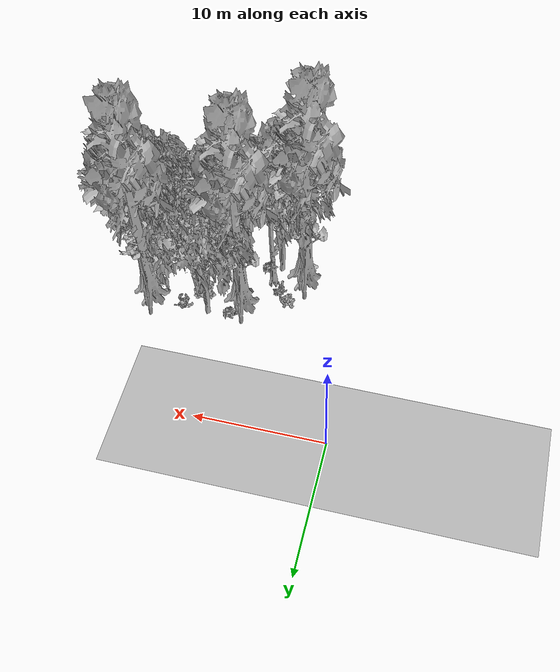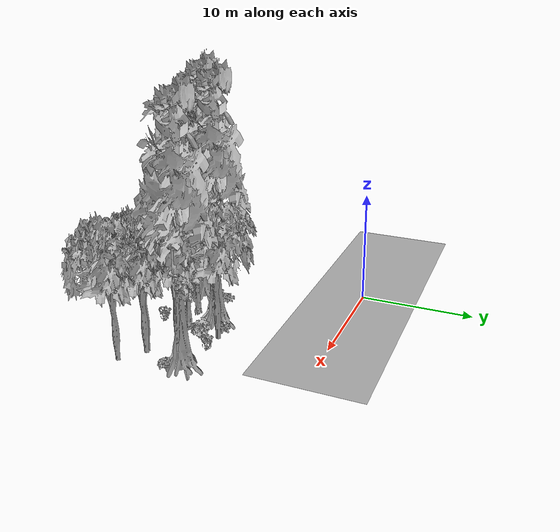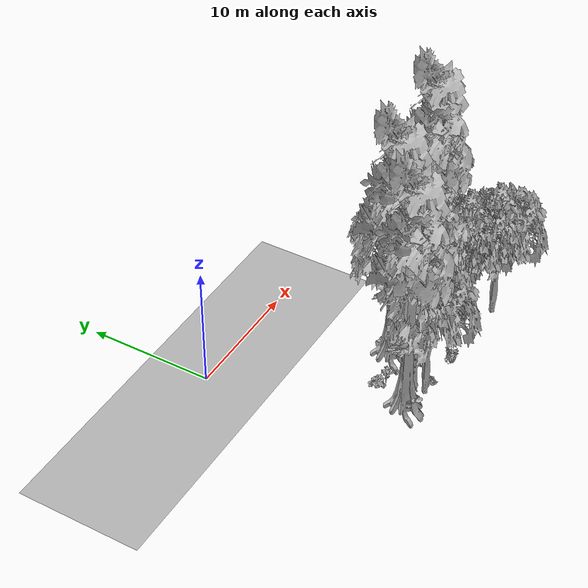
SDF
<sdf version="1.7">
 <world name="default">
  <model name="ground_plane">
   <static>1</static>
   <link name="link">
    <collision name="collision">
     <geometry><plane><normal>0 0 1</normal><size>100 100</size></plane></geometry>
     <surface><contact><ode><min_depth>0.01</min_depth><max_vel>0</max_vel></ode></contact></surface>
    </collision>
    <visual name="grass">
     <cast_shadows>0</cast_shadows>
     <geometry>
      <mesh>
       <scale>0.5814285714285714 0.18142857142857144 0.1</scale>
       <uri>file://grass_plane/meshes/grass_plane.dae</uri>
      </mesh>
     </geometry>
    </visual>
   </link>
  </model>
  <model name="Tree 16">
   <static>1</static>
   <pose>13.27778693210037 -11.897766273142134 0 1.57079 -0 0</pose>
   <link name="link">
    <collision name="collision">
     <geometry><mesh><scale>3.5 5 3.5</scale><uri>model://tree_2/meshes/tree_2.obj</uri></mesh></geometry>
    </collision>
    <visual name="visual">
     <geometry><mesh><scale>3.5 5 3.5</scale><uri>model://tree_2/meshes/tree_2.obj</uri></mesh></geometry>
    </visual>
   </link>
  </model>
  <model name="Tree 72">
   <static>1</static>
   <pose>7.369167061648312 -13.334718413574493 0 1.57079 -0 0</pose>
   <link name="link">
    <collision name="collision">
     <geometry><mesh><scale>3.5 5 3.5</scale><uri>model://tree_9/meshes/tree_9.obj</uri></mesh></geometry>
    </collision>
    <visual name="visual">
     <geometry><mesh><scale>3.5 5 3.5</scale><uri>model://tree_9/meshes/tree_9.obj</uri></mesh></geometry>
    </visual>
   </link>
  </model>
  <model name="Tree 118">
   <static>1</static>
   <pose>10.064745826663227 -12.738711350489549 0 1.57079 -0 0</pose>
   <link name="link">
    <collision name="collision">
     <geometry><mesh><scale>3.5 5 3.5</scale><uri>model://tree_9/meshes/tree_9.obj</uri></mesh></geometry>
    </collision>
    <visual name="visual">
     <geometry><mesh><scale>3.5 5 3.5</scale><uri>model://tree_9/meshes/tree_9.obj</uri></mesh></geometry>
    </visual>
   </link>
  </model>
  <model name="Tree 150">
   <static>1</static>
   <pose>15.576864454143134 -13.437086830486702 0 1.57079 -0 0</pose>
   <link name="link">
    <collision name="collision">
     <geometry><mesh><scale>3.5 5 3.5</scale><uri>model://tree_2/meshes/tree_2.obj</uri></mesh></geometry>
    </collision>
    <visual name="visual">
     <geometry><mesh><scale>3.5 5 3.5</scale><uri>model://tree_2/meshes/tree_2.obj</uri></mesh></geometry>
    </visual>
   </link>
  </model>
  <model name="Tree 159">
   <static>1</static>
   <pose>4.8219079287952695 -13.912061548372165 0 1.57079 -0 0</pose>
   <link name="link">
    <collision name="collision">
     <geometry><mesh><scale>3.5 5 3.5</scale><uri>model://tree_4/meshes/tree_4.obj</uri></mesh></geometry>
    </collision>
    <visual name="visual">
     <geometry><mesh><scale>3.5 5 3.5</scale><uri>model://tree_4/meshes/tree_4.obj</uri></mesh></geometry>
    </visual>
   </link>
  </model>
  <model name="Tree 179">
   <static>1</static>
   <pose>12.707087580295848 -11.847447544326403 0 1.57079 -0 0</pose>
   <link name="link">
    <collision name="collision">
     <geometry><mesh><scale>3.5 5 3.5</scale><uri>model://tree_2/meshes/tree_2.obj</uri></mesh></geometry>
    </collision>
    <visual name="visual">
     <geometry><mesh><scale>3.5 5 3.5</scale><uri>model://tree_2/meshes/tree_2.obj</uri></mesh></geometry>
    </visual>
   </link>
  </model>
  <model name="Tree 281">
   <static>1</static>
   <pose>11.507882212668548 -9.101943372853043 0 1.57079 -0 0</pose>
   <link name="link">
    <collision name="collision">
     <geometry><mesh><scale>3.5 5 3.5</scale><uri>model://tree_2/meshes/tree_2.obj</uri></mesh></geometry>
    </collision>
    <visual name="visual">
     <geometry><mesh><scale>3.5 5 3.5</scale><uri>model://tree_2/meshes/tree_2.obj</uri></mesh></geometry>
    </visual>
   </link>
  </model>
  <model name="Tree 297">
   <static>1</static>
   <pose>17.361173777295306 -14.920218415984811 0 1.57079 -0 0</pose>
   <link name="link">
    <collision name="collision">
     <geometry><mesh><scale>3.5 5 3.5</scale><uri>model://tree_2/meshes/tree_2.obj</uri></mesh></geometry>
    </collision>
    <visual name="visual">
     <geometry><mesh><scale>3.5 5 3.5</scale><uri>model://tree_2/meshes/tree_2.obj</uri></mesh></geometry>
    </visual>
   </link>
  </model>
  <model name="Tree 311">
   <static>1</static>
   <pose>9.13412869021007 -10.490165077148868 0 1.57079 -0 0</pose>
   <link name="link">
    <collision name="collision">
     <geometry><mesh><scale>3.5 5 3.5</scale><uri>model://tree_4/meshes/tree_4.obj</uri></mesh></geometry>
    </collision>
    <visual name="visual">
     <geometry><mesh><scale>3.5 5 3.5</scale><uri>model://tree_4/meshes/tree_4.obj</uri></mesh></geometry>
    </visual>
   </link>
  </model>
  <model name="Tree 365">
   <static>1</static>
   <pose>6.8280691449032105 -14.475135820557751 0 1.57079 -0 0</pose>
   <link name="link">
    <collision name="collision">
     <geometry><mesh><scale>3.5 5 3.5</scale><uri>model://tree_2/meshes/tree_2.obj</uri></mesh></geometry>
    </collision>
    <visual name="visual">
     <geometry><mesh><scale>3.5 5 3.5</scale><uri>model://tree_2/meshes/tree_2.obj</uri></mesh></geometry>
    </visual>
   </link>
  </model>
  <model name="Tree 375">
   <static>1</static>
   <pose>16.352209165071017 -9.681513748692598 0 1.57079 -0 0</pose>
   <link name="link">
    <collision name="collision">
     <geometry><mesh><scale>3.5 5 3.5</scale><uri>model://tree_4/meshes/tree_4.obj</uri></mesh></geometry>
    </collision>
    <visual name="visual">
     <geometry><mesh><scale>3.5 5 3.5</scale><uri>model://tree_4/meshes/tree_4.obj</uri></mesh></geometry>
    </visual>
   </link>
  </model>
  <model name="Tree 428">
   <static>1</static>
   <pose>15.28913388923442 -13.502122379999129 0 1.57079 -0 0</pose>
   <link name="link">
    <collision name="collision">
     <geometry><mesh><scale>3.5 5 3.5</scale><uri>model://tree_2/meshes/tree_2.obj</uri></mesh></geometry>
    </collision>
    <visual name="visual">
     <geometry><mesh><scale>3.5 5 3.5</scale><uri>model://tree_2/meshes/tree_2.obj</uri></mesh></geometry>
    </visual>
   </link>
  </model>
  <model name="Bush 23">
   <static>1</static>
   <pose>4.7975713231630905 -14.444520873572568 0 1.57079 -0 0</pose>
   <link name="link">
    <collision name="collision">
     <geometry><mesh><scale>2 2 2</scale><uri>model://bush_0/meshes/bush_0.obj</uri></mesh></geometry>
     <surface><contact><collide_without_contact>false</collide_without_contact></contact></surface>
    </collision>
    <visual name="visual">
     <geometry><mesh><scale>2 2 2</scale><uri>model://bush_0/meshes/bush_0.obj</uri></mesh></geometry>
    </visual>
   </link>
  </model>
  <model name="Bush 24">
   <static>1</static>
   <pose>11.070318520491206 -12.73202112745804 0 1.57079 -0 0</pose>
   <link name="link">
    <collision name="collision">
     <geometry><mesh><scale>2 2 2</scale><uri>model://bush_5/meshes/bush_5.obj</uri></mesh></geometry>
     <surface><contact><collide_without_contact>false</collide_without_contact></contact></surface>
    </collision>
    <visual name="visual">
     <geometry><mesh><scale>2 2 2</scale><uri>model://bush_5/meshes/bush_5.obj</uri></mesh></geometry>
    </visual>
   </link>
  </model>
  <model name="Bush 51">
   <static>1</static>
   <pose>10.690984554138922 -14.762216628940518 0 1.57079 -0 0</pose>
   <link name="link">
    <collision name="collision">
     <geometry><mesh><scale>2 2 2</scale><uri>model://bush_4/meshes/bush_4.obj</uri></mesh></geometry>
     <surface><contact><collide_without_contact>false</collide_without_contact></contact></surface>
    </collision>
    <visual name="visual">
     <geometry><mesh><scale>2 2 2</scale><uri>model://bush_4/meshes/bush_4.obj</uri></mesh></geometry>
    </visual>
   </link>
  </model>
  <model name="Bush 87">
   <static>1</static>
   <pose>5.766656268532678 -11.18530312599426 0 1.57079 -0 0</pose>
   <link name="link">
    <collision name="collision">
     <geometry><mesh><scale>2 2 2</scale><uri>model://bush_3/meshes/bush_3.obj</uri></mesh></geometry>
     <surface><contact><collide_without_contact>false</collide_without_contact></contact></surface>
    </collision>
    <visual name="visual">
     <geometry><mesh><scale>2 2 2</scale><uri>model://bush_3/meshes/bush_3.obj</uri></mesh></geometry>
    </visual>
   </link>
  </model>
  <model name="Bush 112">
   <static>1</static>
   <pose>17.19530060347381 -10.723212031752762 0 1.57079 -0 0</pose>
   <link name="link">
    <collision name="collision">
     <geometry><mesh><scale>2 2 2</scale><uri>model://bush_3/meshes/bush_3.obj</uri></mesh></geometry>
     <surface><contact><collide_without_contact>false</collide_without_contact></contact></surface>
    </collision>
    <visual name="visual">
     <geometry><mesh><scale>2 2 2</scale><uri>model://bush_3/meshes/bush_3.obj</uri></mesh></geometry>
    </visual>
   </link>
  </model>
  <model name="Bush 148">
   <static>1</static>
   <pose>12.173653375406595 -10.547992630368142 0 1.57079 -0 0</pose>
   <link name="link">
    <collision name="collision">
     <geometry><mesh><scale>2 2 2</scale><uri>model://bush_1/meshes/bush_1.obj</uri></mesh></geometry>
     <surface><contact><collide_without_contact>false</collide_without_contact></contact></surface>
    </collision>
    <visual name="visual">
     <geometry><mesh><scale>2 2 2</scale><uri>model://bush_1/meshes/bush_1.obj</uri></mesh></geometry>
    </visual>
   </link>
  </model>
  <model name="Bush 154">
   <static>1</static>
   <pose>7.961220419205382 -14.347860536337894 0 1.57079 -0 0</pose>
   <link name="link">
    <collision name="collision">
     <geometry><mesh><scale>2 2 2</scale><uri>model://bush_2/meshes/bush_2.obj</uri></mesh></geometry>
     <surface><contact><collide_without_contact>false</collide_without_contact></contact></surface>
    </collision>
    <visual name="visual">
     <geometry><mesh><scale>2 2 2</scale><uri>model://bush_2/meshes/bush_2.obj</uri></mesh></geometry>
    </visual>
   </link>
  </model>
  <model name="Bush 212">
   <static>1</static>
   <pose>13.496013950824427 -9.118855994660446 0 1.57079 -0 0</pose>
   <link name="link">
    <collision name="collision">
     <geometry><mesh><scale>2 2 2</scale><uri>model://bush_4/meshes/bush_4.obj</uri></mesh></geometry>
     <surface><contact><collide_without_contact>false</collide_without_contact></contact></surface>
    </collision>
    <visual name="visual">
     <geometry><mesh><scale>2 2 2</scale><uri>model://bush_4/meshes/bush_4.obj</uri></mesh></geometry>
    </visual>
   </link>
  </model>
  <model name="Bush 221">
   <static>1</static>
   <pose>9.894208014739 -9.365762563610868 0 1.57079 -0 0</pose>
   <link name="link">
    <collision name="collision">
     <geometry><mesh><scale>2 2 2</scale><uri>model://bush_2/meshes/bush_2.obj</uri></mesh></geometry>
     <surface><contact><collide_without_contact>false</collide_without_contact></contact></surface>
    </collision>
    <visual name="visual">
     <geometry><mesh><scale>2 2 2</scale><uri>model://bush_2/meshes/bush_2.obj</uri></mesh></geometry>
    </visual>
   </link>
  </model>
  <model name="Bush 324">
   <static>1</static>
   <pose>6.412300245462603 -11.543223692966862 0 1.57079 -0 0</pose>
   <link name="link">
    <collision name="collision">
     <geometry><mesh><scale>2 2 2</scale><uri>model://bush_5/meshes/bush_5.obj</uri></mesh></geometry>
     <surface><contact><collide_without_contact>false</collide_without_contact></contact></surface>
    </collision>
    <visual name="visual">
     <geometry><mesh><scale>2 2 2</scale><uri>model://bush_5/meshes/bush_5.obj</uri></mesh></geometry>
    </visual>
   </link>
  </model>
 </world>
</sdf>
